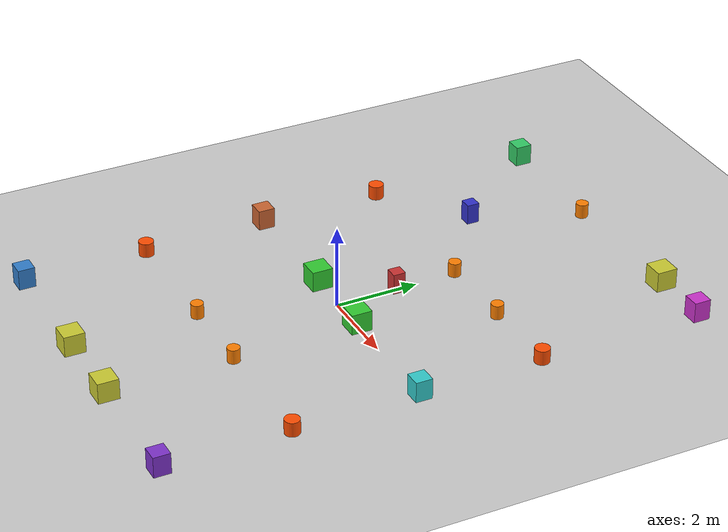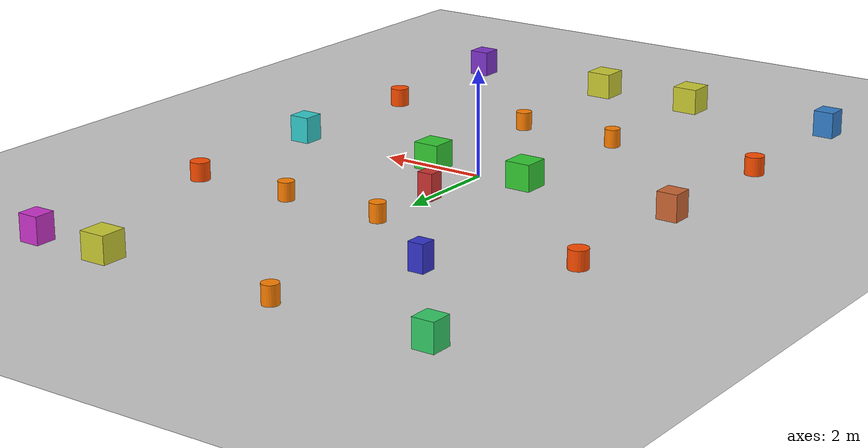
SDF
<sdf version="1.8">
 <world name="default">
  <physics type="ode">
   <real_time_update_rate>1000.0</real_time_update_rate>
   <max_step_size>0.001</max_step_size>
   <real_time_factor>1</real_time_factor>
   <ode>
    <solver>
     <type>quick</type>
     <iters>150</iters>
     <precon_iters>0</precon_iters>
     <sor>1.400000</sor>
     <use_dynamic_moi_rescaling>1</use_dynamic_moi_rescaling>
    </solver>
    <constraints>
     <cfm>0.00001</cfm>
     <erp>0.2</erp>
     <contact_max_correcting_vel>2000.000000</contact_max_correcting_vel>
     <contact_surface_layer>0.01000</contact_surface_layer>
    </constraints>
   </ode>
  </physics>
  <plugin filename="gz-sim-physics-system" name="gz::sim::systems::Physics"/>
  <plugin filename="gz-sim-user-commands-system" name="gz::sim::systems::UserCommands"/>
  <plugin filename="gz-sim-scene-broadcaster-system" name="gz::sim::systems::SceneBroadcaster"/>
  <plugin filename="gz-sim-sensors-system" name="gz::sim::systems::Sensors">
   <render_engine>ogre2</render_engine>
  </plugin>
  <plugin filename="gz-sim-imu-system" name="gz::sim::systems::Imu"/>
  <model name="start_box_1">
   <static>true</static>
   <pose>1.0 -6.0 0.25 0 0 0</pose>
   <link name="link">
    <collision name="collision"><geometry><box><size>0.5 0.5 0.5</size></box></geometry></collision>
    <visual name="visual">
     <geometry><box><size>0.5 0.5 0.5</size></box></geometry>
     <material><ambient>0.8 0.8 0.2 1</ambient><diffuse>0.8 0.8 0.2 1</diffuse></material>
    </visual>
   </link>
  </model>
  <model name="start_box_2">
   <static>true</static>
   <pose>-1.0 -6.0 0.25 0 0 0</pose>
   <link name="link">
    <collision name="collision"><geometry><box><size>0.5 0.5 0.5</size></box></geometry></collision>
    <visual name="visual">
     <geometry><box><size>0.5 0.5 0.5</size></box></geometry>
     <material><ambient>0.8 0.8 0.2 1</ambient><diffuse>0.8 0.8 0.2 1</diffuse></material>
    </visual>
   </link>
  </model>
  <model name="corridor_cone_1">
   <static>true</static>
   <pose>1.0 -3.0 0.175 0 0 0</pose>
   <link name="link">
    <collision name="collision">
     <geometry><cylinder><radius>0.15</radius><length>0.35</length></cylinder></geometry>
    </collision>
    <visual name="visual">
     <geometry><cylinder><radius>0.15</radius><length>0.35</length></cylinder></geometry>
     <material><ambient>1.0 0.5 0.0 1</ambient><diffuse>1.0 0.5 0.0 1</diffuse></material>
    </visual>
   </link>
  </model>
  <model name="corridor_cone_2">
   <static>true</static>
   <pose>-1.0 -3.0 0.175 0 0 0</pose>
   <link name="link">
    <collision name="collision">
     <geometry><cylinder><radius>0.15</radius><length>0.35</length></cylinder></geometry>
    </collision>
    <visual name="visual">
     <geometry><cylinder><radius>0.15</radius><length>0.35</length></cylinder></geometry>
     <material><ambient>1.0 0.5 0.0 1</ambient><diffuse>1.0 0.5 0.0 1</diffuse></material>
    </visual>
   </link>
  </model>
  <model name="corridor_box_1">
   <static>true</static>
   <pose>1.0 0.0 0.25 0 0 0</pose>
   <link name="link">
    <collision name="collision"><geometry><box><size>0.5 0.5 0.5</size></box></geometry></collision>
    <visual name="visual">
     <geometry><box><size>0.5 0.5 0.5</size></box></geometry>
     <material><ambient>0.2 0.8 0.2 1</ambient><diffuse>0.2 0.8 0.2 1</diffuse></material>
    </visual>
   </link>
  </model>
  <model name="corridor_box_2">
   <static>true</static>
   <pose>-1.0 0.0 0.25 0 0 0</pose>
   <link name="link">
    <collision name="collision"><geometry><box><size>0.5 0.5 0.5</size></box></geometry></collision>
    <visual name="visual">
     <geometry><box><size>0.5 0.5 0.5</size></box></geometry>
     <material><ambient>0.2 0.8 0.2 1</ambient><diffuse>0.2 0.8 0.2 1</diffuse></material>
    </visual>
   </link>
  </model>
  <model name="turn_cone_1">
   <static>true</static>
   <pose>2.0 3.0 0.175 0 0 0</pose>
   <link name="link">
    <collision name="collision">
     <geometry><cylinder><radius>0.15</radius><length>0.35</length></cylinder></geometry>
    </collision>
    <visual name="visual">
     <geometry><cylinder><radius>0.15</radius><length>0.35</length></cylinder></geometry>
     <material><ambient>1.0 0.5 0.0 1</ambient><diffuse>1.0 0.5 0.0 1</diffuse></material>
    </visual>
   </link>
  </model>
  <model name="turn_cone_2">
   <static>true</static>
   <pose>0.0 3.0 0.175 0 0 0</pose>
   <link name="link">
    <collision name="collision">
     <geometry><cylinder><radius>0.15</radius><length>0.35</length></cylinder></geometry>
    </collision>
    <visual name="visual">
     <geometry><cylinder><radius>0.15</radius><length>0.35</length></cylinder></geometry>
     <material><ambient>1.0 0.5 0.0 1</ambient><diffuse>1.0 0.5 0.0 1</diffuse></material>
    </visual>
   </link>
  </model>
  <model name="box_obstacle_1">
   <static>true</static>
   <pose>0.0 1.5 0.25 0 0 0</pose>
   <link name="link">
    <collision name="collision"><geometry><box><size>0.3 0.3 0.5</size></box></geometry></collision>
    <visual name="visual">
     <geometry><box><size>0.3 0.3 0.5</size></box></geometry>
     <material><ambient>0.8 0.2 0.2 1</ambient><diffuse>0.8 0.2 0.2 1</diffuse></material>
    </visual>
   </link>
  </model>
  <model name="box_obstacle_2">
   <static>true</static>
   <pose>-2.0 4.5 0.25 0 0 0</pose>
   <link name="link">
    <collision name="collision"><geometry><box><size>0.3 0.3 0.5</size></box></geometry></collision>
    <visual name="visual">
     <geometry><box><size>0.3 0.3 0.5</size></box></geometry>
     <material><ambient>0.2 0.2 0.8 1</ambient><diffuse>0.2 0.2 0.8 1</diffuse></material>
    </visual>
   </link>
  </model>
  <model name="end_box_1">
   <static>true</static>
   <pose>2.5 7.0 0.25 0 0 0</pose>
   <link name="link">
    <collision name="collision"><geometry><box><size>0.5 0.5 0.5</size></box></geometry></collision>
    <visual name="visual">
     <geometry><box><size>0.5 0.5 0.5</size></box></geometry>
     <material><ambient>0.8 0.8 0.2 1</ambient><diffuse>0.8 0.8 0.2 1</diffuse></material>
    </visual>
   </link>
  </model>
  <model name="end_cone_1">
   <static>true</static>
   <pose>-1.0 7.0 0.175 0 0 0</pose>
   <link name="link">
    <collision name="collision">
     <geometry><cylinder><radius>0.15</radius><length>0.35</length></cylinder></geometry>
    </collision>
    <visual name="visual">
     <geometry><cylinder><radius>0.15</radius><length>0.35</length></cylinder></geometry>
     <material><ambient>1.0 0.5 0.0 1</ambient><diffuse>1.0 0.5 0.0 1</diffuse></material>
    </visual>
   </link>
  </model>
  <model name="obstacle_box_1">
   <static>true</static>
   <pose>4.0 -6.0 0.25 0 0 0</pose>
   <link name="link">
    <collision name="collision"><geometry><box><size>0.4 0.4 0.5</size></box></geometry></collision>
    <visual name="visual">
     <geometry><box><size>0.4 0.4 0.5</size></box></geometry>
     <material><ambient>0.5 0.2 0.8 1</ambient><diffuse>0.5 0.2 0.8 1</diffuse></material>
    </visual>
   </link>
  </model>
  <model name="obstacle_box_2">
   <static>true</static>
   <pose>-4.0 -6.0 0.25 0 0 0</pose>
   <link name="link">
    <collision name="collision"><geometry><box><size>0.4 0.4 0.5</size></box></geometry></collision>
    <visual name="visual">
     <geometry><box><size>0.4 0.4 0.5</size></box></geometry>
     <material><ambient>0.2 0.5 0.8 1</ambient><diffuse>0.2 0.5 0.8 1</diffuse></material>
    </visual>
   </link>
  </model>
  <model name="obstacle_cone_1">
   <static>true</static>
   <pose>4.0 -3.0 0.175 0 0 0</pose>
   <link name="link">
    <collision name="collision">
     <geometry><cylinder><radius>0.18</radius><length>0.35</length></cylinder></geometry>
    </collision>
    <visual name="visual">
     <geometry><cylinder><radius>0.18</radius><length>0.35</length></cylinder></geometry>
     <material><ambient>1.0 0.3 0.0 1</ambient><diffuse>1.0 0.3 0.0 1</diffuse></material>
    </visual>
   </link>
  </model>
  <model name="obstacle_cone_2">
   <static>true</static>
   <pose>-4.0 -3.0 0.175 0 0 0</pose>
   <link name="link">
    <collision name="collision">
     <geometry><cylinder><radius>0.18</radius><length>0.35</length></cylinder></geometry>
    </collision>
    <visual name="visual">
     <geometry><cylinder><radius>0.18</radius><length>0.35</length></cylinder></geometry>
     <material><ambient>1.0 0.3 0.0 1</ambient><diffuse>1.0 0.3 0.0 1</diffuse></material>
    </visual>
   </link>
  </model>
  <model name="obstacle_box_3">
   <static>true</static>
   <pose>4.0 0.0 0.25 0 0 0</pose>
   <link name="link">
    <collision name="collision"><geometry><box><size>0.4 0.4 0.5</size></box></geometry></collision>
    <visual name="visual">
     <geometry><box><size>0.4 0.4 0.5</size></box></geometry>
     <material><ambient>0.2 0.8 0.8 1</ambient><diffuse>0.2 0.8 0.8 1</diffuse></material>
    </visual>
   </link>
  </model>
  <model name="obstacle_box_4">
   <static>true</static>
   <pose>-4.0 0.0 0.25 0 0 0</pose>
   <link name="link">
    <collision name="collision"><geometry><box><size>0.4 0.4 0.5</size></box></geometry></collision>
    <visual name="visual">
     <geometry><box><size>0.4 0.4 0.5</size></box></geometry>
     <material><ambient>0.8 0.4 0.2 1</ambient><diffuse>0.8 0.4 0.2 1</diffuse></material>
    </visual>
   </link>
  </model>
  <model name="obstacle_cone_3">
   <static>true</static>
   <pose>4.0 3.0 0.175 0 0 0</pose>
   <link name="link">
    <collision name="collision">
     <geometry><cylinder><radius>0.18</radius><length>0.35</length></cylinder></geometry>
    </collision>
    <visual name="visual">
     <geometry><cylinder><radius>0.18</radius><length>0.35</length></cylinder></geometry>
     <material><ambient>1.0 0.3 0.0 1</ambient><diffuse>1.0 0.3 0.0 1</diffuse></material>
    </visual>
   </link>
  </model>
  <model name="obstacle_cone_4">
   <static>true</static>
   <pose>-4.0 3.0 0.175 0 0 0</pose>
   <link name="link">
    <collision name="collision">
     <geometry><cylinder><radius>0.18</radius><length>0.35</length></cylinder></geometry>
    </collision>
    <visual name="visual">
     <geometry><cylinder><radius>0.18</radius><length>0.35</length></cylinder></geometry>
     <material><ambient>1.0 0.3 0.0 1</ambient><diffuse>1.0 0.3 0.0 1</diffuse></material>
    </visual>
   </link>
  </model>
  <model name="obstacle_box_5">
   <static>true</static>
   <pose>4.0 7.0 0.25 0 0 0</pose>
   <link name="link">
    <collision name="collision"><geometry><box><size>0.4 0.4 0.5</size></box></geometry></collision>
    <visual name="visual">
     <geometry><box><size>0.4 0.4 0.5</size></box></geometry>
     <material><ambient>0.8 0.2 0.8 1</ambient><diffuse>0.8 0.2 0.8 1</diffuse></material>
    </visual>
   </link>
  </model>
  <model name="obstacle_box_6">
   <static>true</static>
   <pose>-4.0 7.0 0.25 0 0 0</pose>
   <link name="link">
    <collision name="collision"><geometry><box><size>0.4 0.4 0.5</size></box></geometry></collision>
    <visual name="visual">
     <geometry><box><size>0.4 0.4 0.5</size></box></geometry>
     <material><ambient>0.2 0.8 0.4 1</ambient><diffuse>0.2 0.8 0.4 1</diffuse></material>
    </visual>
   </link>
  </model>
  <include><uri>https://fuel.gazebosim.org/1.0/OpenRobotics/models/Ground Plane</uri></include>
  <include><uri>https://fuel.gazebosim.org/1.0/OpenRobotics/models/Sun</uri></include>
 </world>
</sdf>
